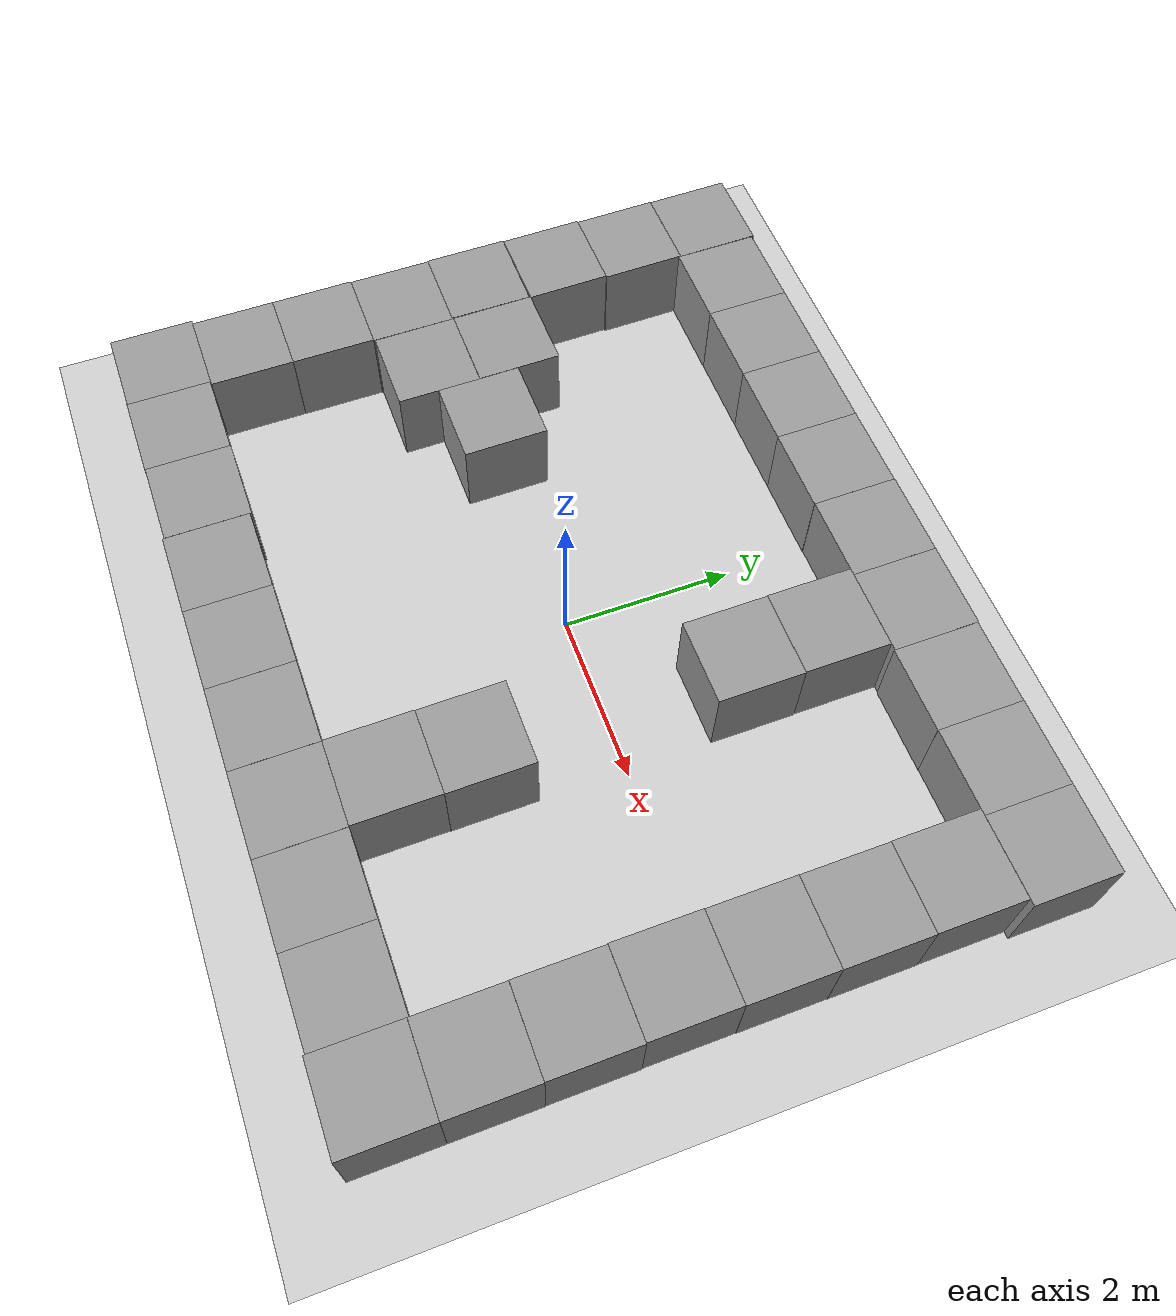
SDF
<sdf version="1.7">
 <world name="default">
  <light name="sun" type="directional">
   <pose>0 0 10 0 -0 0</pose>
   <diffuse>0.8 0.8 0.8 1</diffuse>
   <specular>0.2 0.2 0.2 1</specular>
   <attenuation>
    <range>1000</range>
    <constant>0.9</constant>
    <linear>0.01</linear>
    <quadratic>0.001</quadratic>
   </attenuation>
   <direction>-0.5 0.1 -0.9</direction>
   <spot><inner_angle>0</inner_angle><outer_angle>0</outer_angle><falloff>0</falloff></spot>
  </light>
  <model name="ground_plane">
   <static>1</static>
   <link name="link">
    <collision name="collision">
     <geometry><plane><normal>0 0 1</normal><size>100 100</size></plane></geometry>
     <surface>
      <contact><collide_bitmask>65535</collide_bitmask></contact>
      <friction><ode><mu>100</mu><mu2>50</mu2></ode></friction>
     </surface>
    </collision>
    <visual name="visual">
     <cast_shadows>0</cast_shadows>
     <geometry><plane><normal>0 0 1</normal><size>100 100</size></plane></geometry>
     <material>
      <script><uri>file://media/materials/scripts/gazebo.material</uri><name>Gazebo/Grey</name></script>
     </material>
    </visual>
   </link>
  </model>
  <gravity>0 0 -9.8</gravity>
  <magnetic_field>6e-06 2.3e-05 -4.2e-05</magnetic_field>
  <atmosphere type="adiabatic"/>
  <physics type="ode">
   <max_step_size>0.001</max_step_size>
   <real_time_factor>1</real_time_factor>
   <real_time_update_rate>1000</real_time_update_rate>
  </physics>
  <scene><ambient>0.4 0.4 0.4 1</ambient><background>0.7 0.7 0.7 1</background><shadows>1</shadows></scene>
  <spherical_coordinates>
   <surface_model>EARTH_WGS84</surface_model>
   <latitude_deg>0</latitude_deg>
   <longitude_deg>0</longitude_deg>
   <elevation>0</elevation>
   <heading_deg>0</heading_deg>
  </spherical_coordinates>
  <model name="unit_box">
   <pose>-4.54305 -3.51873 0.499995 -1e-05 0 0.001262</pose>
   <link name="link">
    <inertial>
     <mass>1</mass>
     <inertia>
      <ixx>0.166667</ixx>
      <ixy>0</ixy>
      <ixz>0</ixz>
      <iyy>0.166667</iyy>
      <iyz>0</iyz>
      <izz>0.166667</izz>
     </inertia>
    </inertial>
    <collision name="collision"><geometry><box><size>1 1 1</size></box></geometry></collision>
    <visual name="visual">
     <geometry><box><size>1 1 1</size></box></geometry>
     <material>
      <script><name>Gazebo/Grey</name><uri>file://media/materials/scripts/gazebo.material</uri></script>
     </material>
    </visual>
   </link>
  </model>
  <model name="unit_box_0">
   <pose>-3.54302 -3.52171 0.499995 1e-05 0 0.001315</pose>
   <link name="link">
    <inertial>
     <mass>1</mass>
     <inertia>
      <ixx>0.166667</ixx>
      <ixy>0</ixy>
      <ixz>0</ixz>
      <iyy>0.166667</iyy>
      <iyz>0</iyz>
      <izz>0.166667</izz>
     </inertia>
    </inertial>
    <collision name="collision"><geometry><box><size>1 1 1</size></box></geometry></collision>
    <visual name="visual">
     <geometry><box><size>1 1 1</size></box></geometry>
     <material>
      <script><name>Gazebo/Grey</name><uri>file://media/materials/scripts/gazebo.material</uri></script>
     </material>
    </visual>
   </link>
  </model>
  <model name="unit_box_1">
   <pose>-2.54301 -3.51338 0.499995 -0 -1e-05 0.001358</pose>
   <link name="link">
    <inertial>
     <mass>1</mass>
     <inertia>
      <ixx>0.166667</ixx>
      <ixy>0</ixy>
      <ixz>0</ixz>
      <iyy>0.166667</iyy>
      <iyz>0</iyz>
      <izz>0.166667</izz>
     </inertia>
    </inertial>
    <collision name="collision"><geometry><box><size>1 1 1</size></box></geometry></collision>
    <visual name="visual">
     <geometry><box><size>1 1 1</size></box></geometry>
     <material>
      <script><name>Gazebo/Grey</name><uri>file://media/materials/scripts/gazebo.material</uri></script>
     </material>
    </visual>
   </link>
  </model>
  <model name="unit_box_2">
   <pose>-1.54193 -3.53046 0.499995 -1e-05 0 0.003408</pose>
   <link name="link">
    <inertial>
     <mass>1</mass>
     <inertia>
      <ixx>0.166667</ixx>
      <ixy>0</ixy>
      <ixz>0</ixz>
      <iyy>0.166667</iyy>
      <iyz>0</iyz>
      <izz>0.166667</izz>
     </inertia>
    </inertial>
    <collision name="collision"><geometry><box><size>1 1 1</size></box></geometry></collision>
    <visual name="visual">
     <geometry><box><size>1 1 1</size></box></geometry>
     <material>
      <script><name>Gazebo/Grey</name><uri>file://media/materials/scripts/gazebo.material</uri></script>
     </material>
    </visual>
   </link>
  </model>
  <model name="unit_box_3">
   <pose>-0.541941 -3.52533 0.499995 -1e-05 0 0.003408</pose>
   <link name="link">
    <inertial>
     <mass>1</mass>
     <inertia>
      <ixx>0.166667</ixx>
      <ixy>0</ixy>
      <ixz>0</ixz>
      <iyy>0.166667</iyy>
      <iyz>0</iyz>
      <izz>0.166667</izz>
     </inertia>
    </inertial>
    <collision name="collision"><geometry><box><size>1 1 1</size></box></geometry></collision>
    <visual name="visual">
     <geometry><box><size>1 1 1</size></box></geometry>
     <material>
      <script><name>Gazebo/Grey</name><uri>file://media/materials/scripts/gazebo.material</uri></script>
     </material>
    </visual>
   </link>
  </model>
  <model name="unit_box_4">
   <pose>0.458168 -3.52203 0.499995 1e-05 -0 0.003189</pose>
   <link name="link">
    <inertial>
     <mass>1</mass>
     <inertia>
      <ixx>0.166667</ixx>
      <ixy>0</ixy>
      <ixz>0</ixz>
      <iyy>0.166667</iyy>
      <iyz>0</iyz>
      <izz>0.166667</izz>
     </inertia>
    </inertial>
    <collision name="collision"><geometry><box><size>1 1 1</size></box></geometry></collision>
    <visual name="visual">
     <geometry><box><size>1 1 1</size></box></geometry>
     <material>
      <script><name>Gazebo/Grey</name><uri>file://media/materials/scripts/gazebo.material</uri></script>
     </material>
    </visual>
   </link>
  </model>
  <model name="unit_box_5">
   <pose>1.45929 -3.51793 0.499995 1e-05 -0 0.005102</pose>
   <link name="link">
    <inertial>
     <mass>1</mass>
     <inertia>
      <ixx>0.166667</ixx>
      <ixy>0</ixy>
      <ixz>0</ixz>
      <iyy>0.166667</iyy>
      <iyz>0</iyz>
      <izz>0.166667</izz>
     </inertia>
    </inertial>
    <collision name="collision"><geometry><box><size>1 1 1</size></box></geometry></collision>
    <visual name="visual">
     <geometry><box><size>1 1 1</size></box></geometry>
     <material>
      <script><name>Gazebo/Grey</name><uri>file://media/materials/scripts/gazebo.material</uri></script>
     </material>
    </visual>
   </link>
  </model>
  <model name="unit_box_6">
   <pose>2.46018 -3.51133 0.499995 0 1e-05 0.003727</pose>
   <link name="link">
    <inertial>
     <mass>1</mass>
     <inertia>
      <ixx>0.166667</ixx>
      <ixy>0</ixy>
      <ixz>0</ixz>
      <iyy>0.166667</iyy>
      <iyz>0</iyz>
      <izz>0.166667</izz>
     </inertia>
    </inertial>
    <collision name="collision"><geometry><box><size>1 1 1</size></box></geometry></collision>
    <visual name="visual">
     <geometry><box><size>1 1 1</size></box></geometry>
     <material>
      <script><name>Gazebo/Grey</name><uri>file://media/materials/scripts/gazebo.material</uri></script>
     </material>
    </visual>
   </link>
  </model>
  <model name="unit_box_7">
   <pose>3.46041 -3.50598 0.499995 0 1e-05 0.003244</pose>
   <link name="link">
    <inertial>
     <mass>1</mass>
     <inertia>
      <ixx>0.166667</ixx>
      <ixy>0</ixy>
      <ixz>0</ixz>
      <iyy>0.166667</iyy>
      <iyz>0</iyz>
      <izz>0.166667</izz>
     </inertia>
    </inertial>
    <collision name="collision"><geometry><box><size>1 1 1</size></box></geometry></collision>
    <visual name="visual">
     <geometry><box><size>1 1 1</size></box></geometry>
     <material>
      <script><name>Gazebo/Grey</name><uri>file://media/materials/scripts/gazebo.material</uri></script>
     </material>
    </visual>
   </link>
  </model>
  <model name="unit_box_8">
   <pose>4.4608 -3.5236 0.499995 -0 -1e-05 0.002586</pose>
   <link name="link">
    <inertial>
     <mass>1</mass>
     <inertia>
      <ixx>0.166667</ixx>
      <ixy>0</ixy>
      <ixz>0</ixz>
      <iyy>0.166667</iyy>
      <iyz>0</iyz>
      <izz>0.166667</izz>
     </inertia>
    </inertial>
    <collision name="collision"><geometry><box><size>1 1 1</size></box></geometry></collision>
    <visual name="visual">
     <geometry><box><size>1 1 1</size></box></geometry>
     <material>
      <script><name>Gazebo/Grey</name><uri>file://media/materials/scripts/gazebo.material</uri></script>
     </material>
    </visual>
   </link>
  </model>
  <model name="unit_box_9">
   <pose>4.45826 -2.52331 0.499995 0 1e-05 0.002035</pose>
   <link name="link">
    <inertial>
     <mass>1</mass>
     <inertia>
      <ixx>0.166667</ixx>
      <ixy>0</ixy>
      <ixz>0</ixz>
      <iyy>0.166667</iyy>
      <iyz>0</iyz>
      <izz>0.166667</izz>
     </inertia>
    </inertial>
    <collision name="collision"><geometry><box><size>1 1 1</size></box></geometry></collision>
    <visual name="visual">
     <geometry><box><size>1 1 1</size></box></geometry>
     <material>
      <script><name>Gazebo/Grey</name><uri>file://media/materials/scripts/gazebo.material</uri></script>
     </material>
    </visual>
   </link>
  </model>
  <model name="unit_box_10">
   <pose>4.45179 -1.52297 0.5 0 -0 0.001332</pose>
   <link name="link">
    <inertial>
     <mass>1</mass>
     <inertia>
      <ixx>0.166667</ixx>
      <ixy>0</ixy>
      <ixz>0</ixz>
      <iyy>0.166667</iyy>
      <iyz>0</iyz>
      <izz>0.166667</izz>
     </inertia>
    </inertial>
    <collision name="collision"><geometry><box><size>1 1 1</size></box></geometry></collision>
    <visual name="visual">
     <geometry><box><size>1 1 1</size></box></geometry>
     <material>
      <script><name>Gazebo/Grey</name><uri>file://media/materials/scripts/gazebo.material</uri></script>
     </material>
    </visual>
   </link>
  </model>
  <model name="unit_box_11">
   <pose>4.44262 -0.522791 0.5 0 -0 0.000958</pose>
   <link name="link">
    <inertial>
     <mass>1</mass>
     <inertia>
      <ixx>0.166667</ixx>
      <ixy>0</ixy>
      <ixz>0</ixz>
      <iyy>0.166667</iyy>
      <iyz>0</iyz>
      <izz>0.166667</izz>
     </inertia>
    </inertial>
    <collision name="collision"><geometry><box><size>1 1 1</size></box></geometry></collision>
    <visual name="visual">
     <geometry><box><size>1 1 1</size></box></geometry>
     <material>
      <script><name>Gazebo/Grey</name><uri>file://media/materials/scripts/gazebo.material</uri></script>
     </material>
    </visual>
   </link>
  </model>
  <model name="unit_box_12">
   <pose>4.44569 0.477262 0.499995 0 -1e-05 0.000865</pose>
   <link name="link">
    <inertial>
     <mass>1</mass>
     <inertia>
      <ixx>0.166667</ixx>
      <ixy>0</ixy>
      <ixz>0</ixz>
      <iyy>0.166667</iyy>
      <iyz>0</iyz>
      <izz>0.166667</izz>
     </inertia>
    </inertial>
    <collision name="collision"><geometry><box><size>1 1 1</size></box></geometry></collision>
    <visual name="visual">
     <geometry><box><size>1 1 1</size></box></geometry>
     <material>
      <script><name>Gazebo/Grey</name><uri>file://media/materials/scripts/gazebo.material</uri></script>
     </material>
    </visual>
   </link>
  </model>
  <model name="unit_box_13">
   <pose>4.44733 1.47732 0.499995 -0 1e-05 0.000766</pose>
   <link name="link">
    <inertial>
     <mass>1</mass>
     <inertia>
      <ixx>0.166667</ixx>
      <ixy>0</ixy>
      <ixz>0</ixz>
      <iyy>0.166667</iyy>
      <iyz>0</iyz>
      <izz>0.166667</izz>
     </inertia>
    </inertial>
    <collision name="collision"><geometry><box><size>1 1 1</size></box></geometry></collision>
    <visual name="visual">
     <geometry><box><size>1 1 1</size></box></geometry>
     <material>
      <script><name>Gazebo/Grey</name><uri>file://media/materials/scripts/gazebo.material</uri></script>
     </material>
    </visual>
   </link>
  </model>
  <model name="unit_box_14">
   <pose>4.44232 2.47732 0.499995 0 -1e-05 0.000765</pose>
   <link name="link">
    <inertial>
     <mass>1</mass>
     <inertia>
      <ixx>0.166667</ixx>
      <ixy>0</ixy>
      <ixz>0</ixz>
      <iyy>0.166667</iyy>
      <iyz>0</iyz>
      <izz>0.166667</izz>
     </inertia>
    </inertial>
    <collision name="collision"><geometry><box><size>1 1 1</size></box></geometry></collision>
    <visual name="visual">
     <geometry><box><size>1 1 1</size></box></geometry>
     <material>
      <script><name>Gazebo/Grey</name><uri>file://media/materials/scripts/gazebo.material</uri></script>
     </material>
    </visual>
   </link>
  </model>
  <model name="unit_box_15">
   <pose>4.51872 3.47802 0.499987 0 7e-06 0.000731</pose>
   <link name="link">
    <inertial>
     <mass>1</mass>
     <inertia>
      <ixx>0.166667</ixx>
      <ixy>0</ixy>
      <ixz>0</ixz>
      <iyy>0.166667</iyy>
      <iyz>0</iyz>
      <izz>0.166667</izz>
     </inertia>
    </inertial>
    <collision name="collision"><geometry><box><size>1 1 1</size></box></geometry></collision>
    <visual name="visual">
     <geometry><box><size>1 1 1</size></box></geometry>
     <material>
      <script><name>Gazebo/Grey</name><uri>file://media/materials/scripts/gazebo.material</uri></script>
     </material>
    </visual>
   </link>
  </model>
  <model name="unit_box_16">
   <pose>3.51872 3.47681 0.5 0 -0 0.000731</pose>
   <link name="link">
    <inertial>
     <mass>1</mass>
     <inertia>
      <ixx>0.166667</ixx>
      <ixy>0</ixy>
      <ixz>0</ixz>
      <iyy>0.166667</iyy>
      <iyz>0</iyz>
      <izz>0.166667</izz>
     </inertia>
    </inertial>
    <collision name="collision"><geometry><box><size>1 1 1</size></box></geometry></collision>
    <visual name="visual">
     <geometry><box><size>1 1 1</size></box></geometry>
     <material>
      <script><name>Gazebo/Grey</name><uri>file://media/materials/scripts/gazebo.material</uri></script>
     </material>
    </visual>
   </link>
  </model>
  <model name="unit_box_17">
   <pose>2.51872 3.47308 0.49999 0 -0 0.000731</pose>
   <link name="link">
    <inertial>
     <mass>1</mass>
     <inertia>
      <ixx>0.166667</ixx>
      <ixy>0</ixy>
      <ixz>0</ixz>
      <iyy>0.166667</iyy>
      <iyz>0</iyz>
      <izz>0.166667</izz>
     </inertia>
    </inertial>
    <collision name="collision"><geometry><box><size>1 1 1</size></box></geometry></collision>
    <visual name="visual">
     <geometry><box><size>1 1 1</size></box></geometry>
     <material>
      <script><name>Gazebo/Grey</name><uri>file://media/materials/scripts/gazebo.material</uri></script>
     </material>
    </visual>
   </link>
  </model>
  <model name="unit_box_18">
   <pose>1.51838 3.48431 0.499996 9e-06 -0 0.001383</pose>
   <link name="link">
    <inertial>
     <mass>1</mass>
     <inertia>
      <ixx>0.166667</ixx>
      <ixy>0</ixy>
      <ixz>0</ixz>
      <iyy>0.166667</iyy>
      <iyz>0</iyz>
      <izz>0.166667</izz>
     </inertia>
    </inertial>
    <collision name="collision"><geometry><box><size>1 1 1</size></box></geometry></collision>
    <visual name="visual">
     <geometry><box><size>1 1 1</size></box></geometry>
     <material>
      <script><name>Gazebo/Grey</name><uri>file://media/materials/scripts/gazebo.material</uri></script>
     </material>
    </visual>
   </link>
  </model>
  <model name="unit_box_19">
   <pose>0.517973 3.48284 0.5 0 -0 0.002179</pose>
   <link name="link">
    <inertial>
     <mass>1</mass>
     <inertia>
      <ixx>0.166667</ixx>
      <ixy>0</ixy>
      <ixz>0</ixz>
      <iyy>0.166667</iyy>
      <iyz>0</iyz>
      <izz>0.166667</izz>
     </inertia>
    </inertial>
    <collision name="collision"><geometry><box><size>1 1 1</size></box></geometry></collision>
    <visual name="visual">
     <geometry><box><size>1 1 1</size></box></geometry>
     <material>
      <script><name>Gazebo/Grey</name><uri>file://media/materials/scripts/gazebo.material</uri></script>
     </material>
    </visual>
   </link>
  </model>
  <model name="unit_box_20">
   <pose>-0.482061 3.47541 0.5 0 -0 0.002275</pose>
   <link name="link">
    <inertial>
     <mass>1</mass>
     <inertia>
      <ixx>0.166667</ixx>
      <ixy>0</ixy>
      <ixz>0</ixz>
      <iyy>0.166667</iyy>
      <iyz>0</iyz>
      <izz>0.166667</izz>
     </inertia>
    </inertial>
    <collision name="collision"><geometry><box><size>1 1 1</size></box></geometry></collision>
    <visual name="visual">
     <geometry><box><size>1 1 1</size></box></geometry>
     <material>
      <script><name>Gazebo/Grey</name><uri>file://media/materials/scripts/gazebo.material</uri></script>
     </material>
    </visual>
   </link>
  </model>
  <model name="unit_box_21">
   <pose>-1.48207 3.47374 0.499995 -1e-05 -0 0.002295</pose>
   <link name="link">
    <inertial>
     <mass>1</mass>
     <inertia>
      <ixx>0.166667</ixx>
      <ixy>0</ixy>
      <ixz>0</ixz>
      <iyy>0.166667</iyy>
      <iyz>0</iyz>
      <izz>0.166667</izz>
     </inertia>
    </inertial>
    <collision name="collision"><geometry><box><size>1 1 1</size></box></geometry></collision>
    <visual name="visual">
     <geometry><box><size>1 1 1</size></box></geometry>
     <material>
      <script><name>Gazebo/Grey</name><uri>file://media/materials/scripts/gazebo.material</uri></script>
     </material>
    </visual>
   </link>
  </model>
  <model name="unit_box_22">
   <pose>-2.48208 3.47261 0.49999 0 -0 0.002311</pose>
   <link name="link">
    <inertial>
     <mass>1</mass>
     <inertia>
      <ixx>0.166667</ixx>
      <ixy>0</ixy>
      <ixz>0</ixz>
      <iyy>0.166667</iyy>
      <iyz>0</iyz>
      <izz>0.166667</izz>
     </inertia>
    </inertial>
    <collision name="collision"><geometry><box><size>1 1 1</size></box></geometry></collision>
    <visual name="visual">
     <geometry><box><size>1 1 1</size></box></geometry>
     <material>
      <script><name>Gazebo/Grey</name><uri>file://media/materials/scripts/gazebo.material</uri></script>
     </material>
    </visual>
   </link>
  </model>
  <model name="unit_box_23">
   <pose>-3.48209 3.46928 0.5 0 -0 0.002339</pose>
   <link name="link">
    <inertial>
     <mass>1</mass>
     <inertia>
      <ixx>0.166667</ixx>
      <ixy>0</ixy>
      <ixz>0</ixz>
      <iyy>0.166667</iyy>
      <iyz>0</iyz>
      <izz>0.166667</izz>
     </inertia>
    </inertial>
    <collision name="collision"><geometry><box><size>1 1 1</size></box></geometry></collision>
    <visual name="visual">
     <geometry><box><size>1 1 1</size></box></geometry>
     <material>
      <script><name>Gazebo/Grey</name><uri>file://media/materials/scripts/gazebo.material</uri></script>
     </material>
    </visual>
   </link>
  </model>
  <model name="unit_box_24">
   <pose>-4.48651 3.49105 0.5 0 -0 0.011098</pose>
   <link name="link">
    <inertial>
     <mass>1</mass>
     <inertia>
      <ixx>0.166667</ixx>
      <ixy>0</ixy>
      <ixz>0</ixz>
      <iyy>0.166667</iyy>
      <iyz>0</iyz>
      <izz>0.166667</izz>
     </inertia>
    </inertial>
    <collision name="collision"><geometry><box><size>1 1 1</size></box></geometry></collision>
    <visual name="visual">
     <geometry><box><size>1 1 1</size></box></geometry>
     <material>
      <script><name>Gazebo/Grey</name><uri>file://media/materials/scripts/gazebo.material</uri></script>
     </material>
    </visual>
   </link>
  </model>
  <model name="unit_box_25">
   <pose>-4.4818 2.49046 0.499996 7e-06 -0 0.012269</pose>
   <link name="link">
    <inertial>
     <mass>1</mass>
     <inertia>
      <ixx>0.166667</ixx>
      <ixy>0</ixy>
      <ixz>0</ixz>
      <iyy>0.166667</iyy>
      <iyz>0</iyz>
      <izz>0.166667</izz>
     </inertia>
    </inertial>
    <collision name="collision"><geometry><box><size>1 1 1</size></box></geometry></collision>
    <visual name="visual">
     <geometry><box><size>1 1 1</size></box></geometry>
     <material>
      <script><name>Gazebo/Grey</name><uri>file://media/materials/scripts/gazebo.material</uri></script>
     </material>
    </visual>
   </link>
  </model>
  <model name="unit_box_26">
   <pose>-4.49041 1.49028 0.499996 0 8e-06 0.012273</pose>
   <link name="link">
    <inertial>
     <mass>1</mass>
     <inertia>
      <ixx>0.166667</ixx>
      <ixy>0</ixy>
      <ixz>0</ixz>
      <iyy>0.166667</iyy>
      <iyz>0</iyz>
      <izz>0.166667</izz>
     </inertia>
    </inertial>
    <collision name="collision"><geometry><box><size>1 1 1</size></box></geometry></collision>
    <visual name="visual">
     <geometry><box><size>1 1 1</size></box></geometry>
     <material>
      <script><name>Gazebo/Grey</name><uri>file://media/materials/scripts/gazebo.material</uri></script>
     </material>
    </visual>
   </link>
  </model>
  <model name="unit_box_27">
   <pose>-4.49756 0.481457 0.499995 0 1e-05 0.001169</pose>
   <link name="link">
    <inertial>
     <mass>1</mass>
     <inertia>
      <ixx>0.166667</ixx>
      <ixy>0</ixy>
      <ixz>0</ixz>
      <iyy>0.166667</iyy>
      <iyz>0</iyz>
      <izz>0.166667</izz>
     </inertia>
    </inertial>
    <collision name="collision"><geometry><box><size>1 1 1</size></box></geometry></collision>
    <visual name="visual">
     <geometry><box><size>1 1 1</size></box></geometry>
     <material>
      <script><name>Gazebo/Grey</name><uri>file://media/materials/scripts/gazebo.material</uri></script>
     </material>
    </visual>
   </link>
  </model>
  <model name="unit_box_28">
   <pose>-4.48555 -0.518566 0.499995 -0 -1e-05 0.00118</pose>
   <link name="link">
    <inertial>
     <mass>1</mass>
     <inertia>
      <ixx>0.166667</ixx>
      <ixy>0</ixy>
      <ixz>0</ixz>
      <iyy>0.166667</iyy>
      <iyz>0</iyz>
      <izz>0.166667</izz>
     </inertia>
    </inertial>
    <collision name="collision"><geometry><box><size>1 1 1</size></box></geometry></collision>
    <visual name="visual">
     <geometry><box><size>1 1 1</size></box></geometry>
     <material>
      <script><name>Gazebo/Grey</name><uri>file://media/materials/scripts/gazebo.material</uri></script>
     </material>
    </visual>
   </link>
  </model>
  <model name="unit_box_29">
   <pose>-4.49813 -2.51862 0.499995 1e-05 -0 0.001195</pose>
   <link name="link">
    <inertial>
     <mass>1</mass>
     <inertia>
      <ixx>0.166667</ixx>
      <ixy>0</ixy>
      <ixz>0</ixz>
      <iyy>0.166667</iyy>
      <iyz>0</iyz>
      <izz>0.166667</izz>
     </inertia>
    </inertial>
    <collision name="collision"><geometry><box><size>1 1 1</size></box></geometry></collision>
    <visual name="visual">
     <geometry><box><size>1 1 1</size></box></geometry>
     <material>
      <script><name>Gazebo/Grey</name><uri>file://media/materials/scripts/gazebo.material</uri></script>
     </material>
    </visual>
   </link>
  </model>
  <model name="unit_box_30">
   <pose>-4.49662 -1.51861 0.5 0 -0 0.001189</pose>
   <link name="link">
    <inertial>
     <mass>1</mass>
     <inertia>
      <ixx>0.166667</ixx>
      <ixy>0</ixy>
      <ixz>0</ixz>
      <iyy>0.166667</iyy>
      <iyz>0</iyz>
      <izz>0.166667</izz>
     </inertia>
    </inertial>
    <collision name="collision"><geometry><box><size>1 1 1</size></box></geometry></collision>
    <visual name="visual">
     <geometry><box><size>1 1 1</size></box></geometry>
     <material>
      <script><name>Gazebo/Grey</name><uri>file://media/materials/scripts/gazebo.material</uri></script>
     </material>
    </visual>
   </link>
  </model>
  <model name="unit_box_31">
   <pose>1.43773 2.48412 0.499995 0 -1e-05 0.001185</pose>
   <link name="link">
    <inertial>
     <mass>1</mass>
     <inertia>
      <ixx>0.166667</ixx>
      <ixy>0</ixy>
      <ixz>0</ixz>
      <iyy>0.166667</iyy>
      <iyz>0</iyz>
      <izz>0.166667</izz>
     </inertia>
    </inertial>
    <collision name="collision"><geometry><box><size>1 1 1</size></box></geometry></collision>
    <visual name="visual">
     <geometry><box><size>1 1 1</size></box></geometry>
     <material>
      <script><name>Gazebo/Grey</name><uri>file://media/materials/scripts/gazebo.material</uri></script>
     </material>
    </visual>
   </link>
  </model>
  <model name="unit_box_32">
   <pose>1.44442 1.48411 0.5 0 -0 0.001154</pose>
   <link name="link">
    <inertial>
     <mass>1</mass>
     <inertia>
      <ixx>0.166667</ixx>
      <ixy>0</ixy>
      <ixz>0</ixz>
      <iyy>0.166667</iyy>
      <iyz>0</iyz>
      <izz>0.166667</izz>
     </inertia>
    </inertial>
    <collision name="collision"><geometry><box><size>1 1 1</size></box></geometry></collision>
    <visual name="visual">
     <geometry><box><size>1 1 1</size></box></geometry>
     <material>
      <script><name>Gazebo/Grey</name><uri>file://media/materials/scripts/gazebo.material</uri></script>
     </material>
    </visual>
   </link>
  </model>
  <model name="unit_box_33">
   <pose>1.44656 -1.51787 0.499995 1e-05 -0 0.005037</pose>
   <link name="link">
    <inertial>
     <mass>1</mass>
     <inertia>
      <ixx>0.166667</ixx>
      <ixy>0</ixy>
      <ixz>0</ixz>
      <iyy>0.166667</iyy>
      <iyz>0</iyz>
      <izz>0.166667</izz>
     </inertia>
    </inertial>
    <collision name="collision"><geometry><box><size>1 1 1</size></box></geometry></collision>
    <visual name="visual">
     <geometry><box><size>1 1 1</size></box></geometry>
     <material>
      <script><name>Gazebo/Grey</name><uri>file://media/materials/scripts/gazebo.material</uri></script>
     </material>
    </visual>
   </link>
  </model>
  <model name="unit_box_34">
   <pose>1.44698 -2.51793 0.499995 1e-05 -0 0.005055</pose>
   <link name="link">
    <inertial>
     <mass>1</mass>
     <inertia>
      <ixx>0.166667</ixx>
      <ixy>0</ixy>
      <ixz>0</ixz>
      <iyy>0.166667</iyy>
      <iyz>0</iyz>
      <izz>0.166667</izz>
     </inertia>
    </inertial>
    <collision name="collision"><geometry><box><size>1 1 1</size></box></geometry></collision>
    <visual name="visual">
     <geometry><box><size>1 1 1</size></box></geometry>
     <material>
      <script><name>Gazebo/Grey</name><uri>file://media/materials/scripts/gazebo.material</uri></script>
     </material>
    </visual>
   </link>
  </model>
  <model name="unit_box_35">
   <pose>-3.49183 0.500291 0.500001 1e-06 2e-06 0.00793</pose>
   <link name="link">
    <inertial>
     <mass>1</mass>
     <inertia>
      <ixx>0.166667</ixx>
      <ixy>0</ixy>
      <ixz>0</ixz>
      <iyy>0.166667</iyy>
      <iyz>0</iyz>
      <izz>0.166667</izz>
     </inertia>
    </inertial>
    <collision name="collision"><geometry><box><size>1 1 1</size></box></geometry></collision>
    <visual name="visual">
     <geometry><box><size>1 1 1</size></box></geometry>
     <material>
      <script><name>Gazebo/Grey</name><uri>file://media/materials/scripts/gazebo.material</uri></script>
     </material>
    </visual>
   </link>
  </model>
  <model name="unit_box_36">
   <pose>-3.48277 -0.500886 0.499998 -0 4e-06 0.005494</pose>
   <link name="link">
    <inertial>
     <mass>1</mass>
     <inertia>
      <ixx>0.166667</ixx>
      <ixy>0</ixy>
      <ixz>0</ixz>
      <iyy>0.166667</iyy>
      <iyz>0</iyz>
      <izz>0.166667</izz>
     </inertia>
    </inertial>
    <collision name="collision"><geometry><box><size>1 1 1</size></box></geometry></collision>
    <visual name="visual">
     <geometry><box><size>1 1 1</size></box></geometry>
     <material>
      <script><name>Gazebo/Grey</name><uri>file://media/materials/scripts/gazebo.material</uri></script>
     </material>
    </visual>
   </link>
  </model>
  <model name="unit_box_37">
   <pose>-2.48529 -0.01142 0.499995 -0 -1e-05 0.00523</pose>
   <link name="link">
    <inertial>
     <mass>1</mass>
     <inertia>
      <ixx>0.166667</ixx>
      <ixy>0</ixy>
      <ixz>0</ixz>
      <iyy>0.166667</iyy>
      <iyz>0</iyz>
      <izz>0.166667</izz>
     </inertia>
    </inertial>
    <collision name="collision"><geometry><box><size>1 1 1</size></box></geometry></collision>
    <visual name="visual">
     <geometry><box><size>1 1 1</size></box></geometry>
     <material>
      <script><name>Gazebo/Grey</name><uri>file://media/materials/scripts/gazebo.material</uri></script>
     </material>
    </visual>
   </link>
  </model>
 </world>
</sdf>
